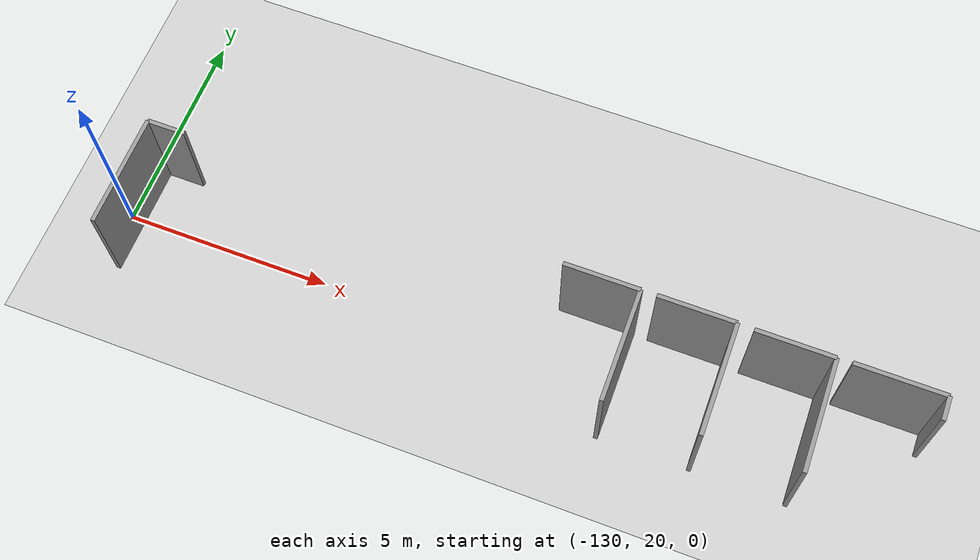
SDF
<sdf version="1.6">
 <world name="default">
  <model name="ground_plane">
   <static>1</static>
   <link name="link">
    <collision name="collision">
     <geometry><plane><normal>0 0 1</normal><size>100 100</size></plane></geometry>
     <surface><friction><ode><mu>100</mu><mu2>50</mu2></ode></friction></surface>
    </collision>
    <visual name="visual">
     <cast_shadows>0</cast_shadows>
     <geometry><plane><normal>0 0 1</normal><size>100 100</size></plane></geometry>
     <material>
      <script><uri>file://media/materials/scripts/gazebo.material</uri><name>Gazebo/Grey</name></script>
     </material>
    </visual>
   </link>
  </model>
  <model name="50015848">
   <static>1</static>
   <link name="Wall_9">
    <collision name="Wall_9_Collision">
     <geometry><box><size>0.928391553388 0.1 2.5</size></box></geometry>
     <pose>0.464195776694 0 1.25 0 0 0</pose>
    </collision>
    <visual name="Wall_9_Visual">
     <pose>0.464195776694 0 1.25 0 0 0</pose>
     <geometry><box><size>0.928391553388 0.1 2.5</size></box></geometry>
     <material>
      <script><uri>file://media/materials/scripts/gazebo.material</uri><name>Gazebo/Grey</name></script>
      <ambient>1 1 1 1</ambient>
     </material>
    </visual>
    <pose>3.01606733947 -22.3788289174 0 0 0 3.14159265359</pose>
   </link>
   <link name="Wall_10">
    <collision name="Wall_10_Collision">
     <geometry><box><size>2.71210093309 0.1 2.5</size></box></geometry>
     <pose>1.35605046654 0 1.25 0 0 0</pose>
    </collision>
    <visual name="Wall_10_Visual">
     <pose>1.35605046654 0 1.25 0 0 0</pose>
     <geometry><box><size>2.71210093309 0.1 2.5</size></box></geometry>
     <material>
      <script><uri>file://media/materials/scripts/gazebo.material</uri><name>Gazebo/Grey</name></script>
      <ambient>1 1 1 1</ambient>
     </material>
    </visual>
    <pose>2.08767578608 -22.3788289174 0 0 0 -1.57079632679</pose>
   </link>
   <link name="Wall_48">
    <collision name="Wall_48_Collision">
     <geometry><box><size>1.78117209751 0.1 2.5</size></box></geometry>
     <pose>0.890586048754 0 1.25 0 0 0</pose>
    </collision>
    <visual name="Wall_48_Visual">
     <pose>0.890586048754 0 1.25 0 0 0</pose>
     <geometry><box><size>1.78117209751 0.1 2.5</size></box></geometry>
     <material>
      <script><uri>file://media/materials/scripts/gazebo.material</uri><name>Gazebo/Grey</name></script>
      <ambient>1 1 1 1</ambient>
     </material>
    </visual>
    <pose>12.1325222488 -22.4019181853 0 0 0 0.0</pose>
   </link>
   <link name="Wall_49">
    <collision name="Wall_49_Collision">
     <geometry><box><size>2.68669274379 0.1 2.5</size></box></geometry>
     <pose>1.3433463719 0 1.25 0 0 0</pose>
    </collision>
    <visual name="Wall_49_Visual">
     <pose>1.3433463719 0 1.25 0 0 0</pose>
     <geometry><box><size>2.68669274379 0.1 2.5</size></box></geometry>
     <material>
      <script><uri>file://media/materials/scripts/gazebo.material</uri><name>Gazebo/Grey</name></script>
      <ambient>1 1 1 1</ambient>
     </material>
    </visual>
    <pose>13.9136943463 -22.4019181853 0 0 0 -1.55804673432</pose>
   </link>
   <link name="Wall_53">
    <collision name="Wall_53_Collision">
     <geometry><box><size>1.81644031995 0.1 2.5</size></box></geometry>
     <pose>0.908220159976 0 1.25 0 0 0</pose>
    </collision>
    <visual name="Wall_53_Visual">
     <pose>0.908220159976 0 1.25 0 0 0</pose>
     <geometry><box><size>1.81644031995 0.1 2.5</size></box></geometry>
     <material>
      <script><uri>file://media/materials/scripts/gazebo.material</uri><name>Gazebo/Grey</name></script>
      <ambient>1 1 1 1</ambient>
     </material>
    </visual>
    <pose>14.2775406124 -22.4031868264 0 0 0 0.0</pose>
   </link>
   <link name="Wall_54">
    <collision name="Wall_54_Collision">
     <geometry><box><size>2.67057254111 0.1 2.5</size></box></geometry>
     <pose>1.33528627055 0 1.25 0 0 0</pose>
    </collision>
    <visual name="Wall_54_Visual">
     <pose>1.33528627055 0 1.25 0 0 0</pose>
     <geometry><box><size>2.67057254111 0.1 2.5</size></box></geometry>
     <material>
      <script><uri>file://media/materials/scripts/gazebo.material</uri><name>Gazebo/Grey</name></script>
      <ambient>1 1 1 1</ambient>
     </material>
    </visual>
    <pose>16.0939809323 -22.4031868264 0 0 0 -1.56291050451</pose>
   </link>
   <link name="Wall_58">
    <collision name="Wall_58_Collision">
     <geometry><box><size>1.81491795064 0.1 2.5</size></box></geometry>
     <pose>0.907458975319 0 1.25 0 0 0</pose>
    </collision>
    <visual name="Wall_58_Visual">
     <pose>0.907458975319 0 1.25 0 0 0</pose>
     <geometry><box><size>1.81491795064 0.1 2.5</size></box></geometry>
     <material>
      <script><uri>file://media/materials/scripts/gazebo.material</uri><name>Gazebo/Grey</name></script>
      <ambient>1 1 1 1</ambient>
     </material>
    </visual>
    <pose>16.4702598811 -22.427037279 0 0 0 0.0</pose>
   </link>
   <link name="Wall_59">
    <collision name="Wall_59_Collision">
     <geometry><box><size>2.6627446867 0.1 2.5</size></box></geometry>
     <pose>1.33137234335 0 1.25 0 0 0</pose>
    </collision>
    <visual name="Wall_59_Visual">
     <pose>1.33137234335 0 1.25 0 0 0</pose>
     <geometry><box><size>2.6627446867 0.1 2.5</size></box></geometry>
     <material>
      <script><uri>file://media/materials/scripts/gazebo.material</uri><name>Gazebo/Grey</name></script>
      <ambient>1 1 1 1</ambient>
     </material>
    </visual>
    <pose>18.2851778318 -22.427037279 0 0 0 -1.55402481267</pose>
   </link>
   <link name="Wall_63">
    <collision name="Wall_63_Collision">
     <geometry><box><size>2.08995934005 0.1 2.5</size></box></geometry>
     <pose>1.04497967003 0 1.25 0 0 0</pose>
    </collision>
    <visual name="Wall_63_Visual">
     <pose>1.04497967003 0 1.25 0 0 0</pose>
     <geometry><box><size>2.08995934005 0.1 2.5</size></box></geometry>
     <material>
      <script><uri>file://media/materials/scripts/gazebo.material</uri><name>Gazebo/Grey</name></script>
      <ambient>1 1 1 1</ambient>
     </material>
    </visual>
    <pose>18.6239050042 -22.4196791607 0 0 0 0.0</pose>
   </link>
   <link name="Wall_64">
    <collision name="Wall_64_Collision">
     <geometry><box><size>0.572410862105 0.1 2.5</size></box></geometry>
     <pose>0.286205431053 0 1.25 0 0 0</pose>
    </collision>
    <visual name="Wall_64_Visual">
     <pose>0.286205431053 0 1.25 0 0 0</pose>
     <geometry><box><size>0.572410862105 0.1 2.5</size></box></geometry>
     <material>
      <script><uri>file://media/materials/scripts/gazebo.material</uri><name>Gazebo/Grey</name></script>
      <ambient>1 1 1 1</ambient>
     </material>
    </visual>
    <pose>20.7138643442 -22.4196791607 0 0 0 -1.57079632679</pose>
   </link>
   <pose>-131.8 43.7717730528 0 0 0 0</pose>
  </model>
 </world>
</sdf>
